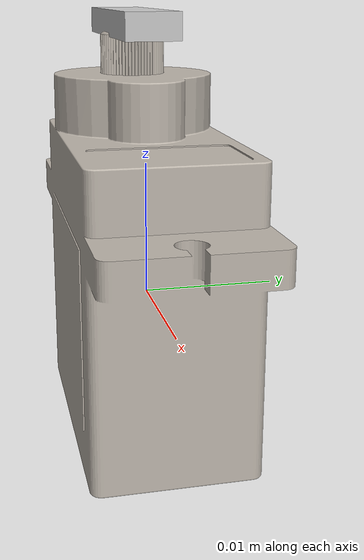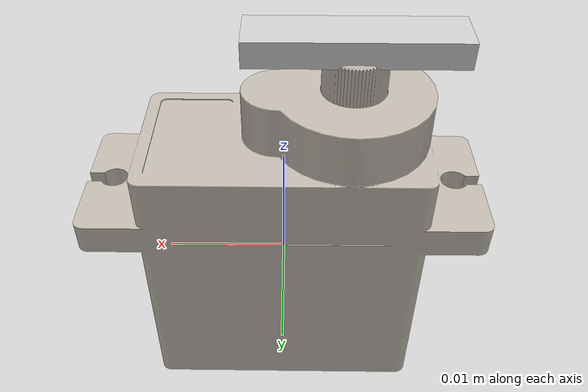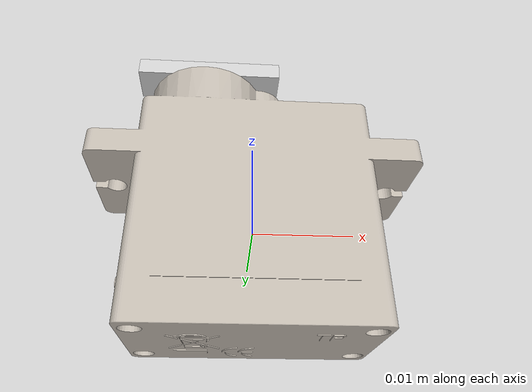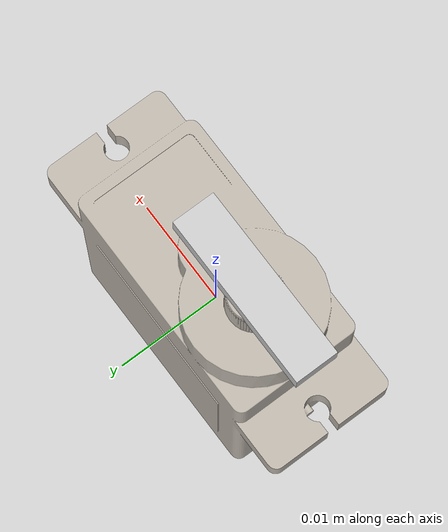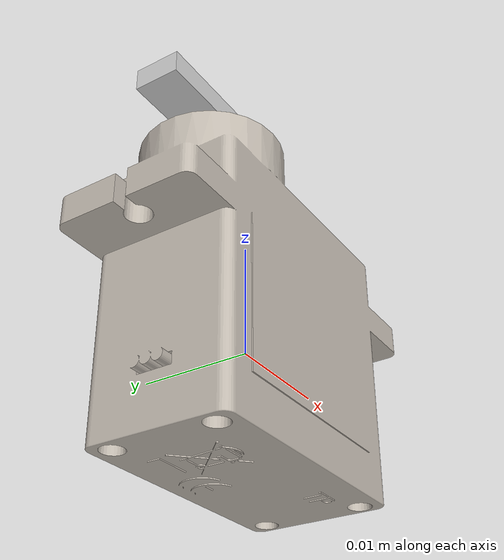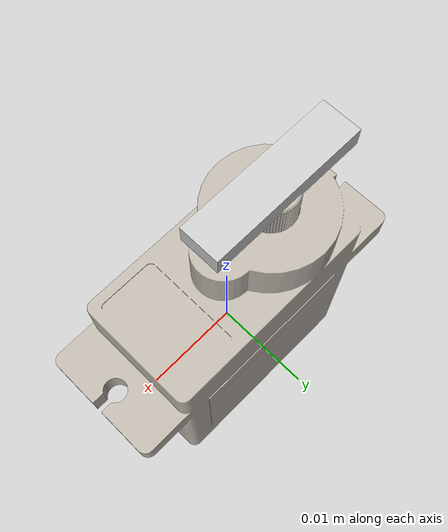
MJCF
<mujoco model="servo_body">
  <asset>
    <texture name="tex_servo" file="textures/servo_body_texture.png" type="2d"/>
    <material name="mat_servo" texture="tex_servo" specular="0.3"/>
    <mesh name="mesh_body" file="meshes/servo_body.obj" scale="1 1 1"/>
  </asset>

  <worldbody>
    <light pos="0 0 1" dir="0 0 -1" diffuse="1 1 1"/>

    <body name="root">
        <geom type="mesh" mesh="mesh_body" material="mat_servo"/>

        <site name="conn_base"              group="3" xyaxes="1 0 0  0 -1 0" type="sphere" size="0.001" rgba="1 0 0 1" pos="0 0 -.0105"/>
        <site name="conn_side_screw_left"   group="3" xyaxes="1 0 0  0 -1 0"  type="sphere" size="0.001" rgba="1 0 0 1" pos="-0.014 0 0.0075"/>
        <site name="conn_side_screw_right"  group="3" xyaxes="1 0 0  0 -1 0"  type="sphere" size="0.001" rgba="1 0 0 1" pos="0.014 0 0.0075"/>

        <body name="horn" pos="-0.005 0 0.02">
            <joint name="servo_joint" type="hinge" axis="0 0 1" range="-1.5708 1.5708" limited="true" damping="0.01"/>

            <geom type="box" size="0.008 0.002  0.001" pos="0 0 0" rgba="0.8 0.8 0.8 1"/>
            <site name="conn_horn"          group="3" xyaxes="1 0 0  0 -1 0" type="sphere" size="0.001" rgba="0 1 0 1" pos="0 0 0.005"/>
        </body>
    </body>
  </worldbody>

  <actuator>
      <position name="servo_actuator" joint="servo_joint" ctrlrange="-1.5708 1.5708" kp=".05"/>
  </actuator>

  <sensor>
      <jointpos name="servo_pos_sensor" joint="servo_joint"/>
  </sensor>

</mujoco>
